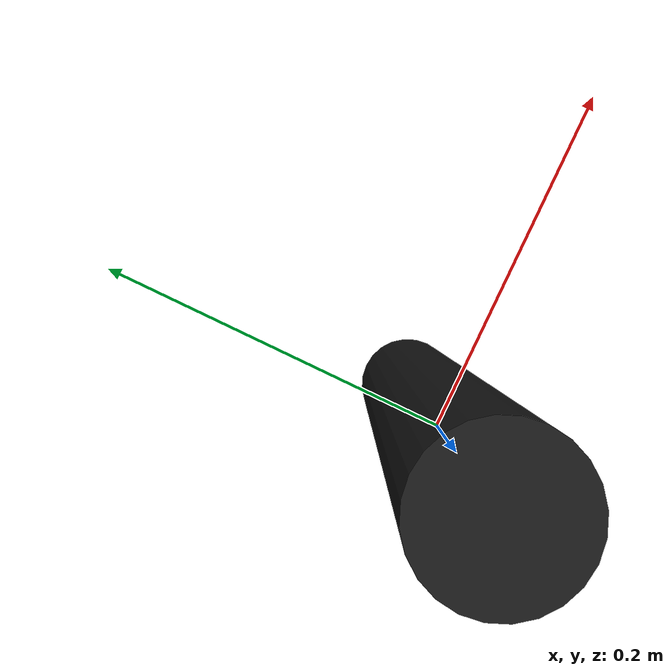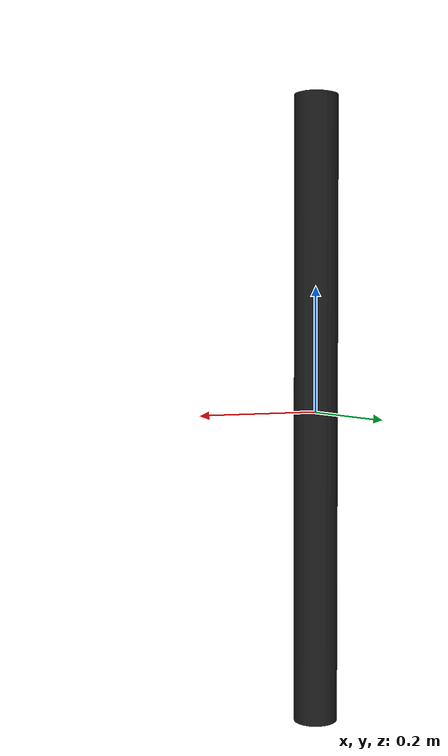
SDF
<?xml version="1.0" ?>
<sdf version="1.6">
  <model name="chain_1m">
    <link name="base_link">
      <visual name="visual">
        <geometry>
          <cylinder>
            <radius>0.035</radius>
            <length>1.0</length>
          </cylinder>
        </geometry>
        <material>
          <ambient>0.1 0.1 0.1 1.0</ambient>
          <diffuse>0.1 0.1 0.1 1.0</diffuse>
          <specular>0.1 0.1 0.1 1.0</specular>
        </material>
      </visual>
      <collision name="collision">
        <geometry>
          <cylinder>
            <radius>0.035</radius>
            <length>1.0</length>
          </cylinder>
        </geometry>
      </collision>
      <inertial>
        <mass>908</mass>
        <inertia>
          <ixx>81.9667917</ixx>
          <ixy>0.0</ixy>
          <ixz>0.0</ixz>
          <iyy>81.9667917</iyy>
          <iyz>0.0</iyz>
          <izz>0.60025</izz>
        </inertia>
      </inertial>
    </link>
  </model>
</sdf>
